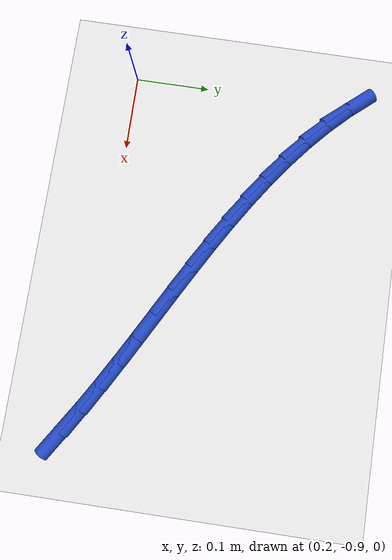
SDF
<sdf version="1.6">
 <world name="default">
  <model name="ground_plane">
   <static>1</static>
   <link name="link">
    <collision name="collision">
     <geometry><plane><normal>0 0 1</normal><size>100 100</size></plane></geometry>
     <surface><friction><ode><mu>100</mu><mu2>50</mu2></ode></friction></surface>
    </collision>
    <visual name="visual">
     <cast_shadows>0</cast_shadows>
     <geometry><plane><normal>0 0 1</normal><size>100 100</size></plane></geometry>
     <material>
      <script><uri>file://media/materials/scripts/gazebo.material</uri><name>Gazebo/WhiteGlow</name></script>
     </material>
    </visual>
   </link>
  </model>
  <model name="line">
   <link name="link_168">
    <pose>0.6838676280852225 -0.917145565636407 0.01 0 1.57 -0.568879682439612</pose>
    <collision name="collision">
     <geometry><cylinder><radius>0.01</radius><length>0.08</length></cylinder></geometry>
    </collision>
    <visual name="visual">
     <material>
      <script><name>Gazebo/Blue</name><uri>file://media/materials/scripts/gazebo.material</uri></script>
     </material>
     <geometry><cylinder><radius>0.01</radius><length>0.08</length></cylinder></geometry>
    </visual>
   </link>
   <link name="link_169">
    <pose>0.6528782518490504 -0.8973312963901333 0.01 0 1.57 -0.5418631592980144</pose>
    <collision name="collision">
     <geometry><cylinder><radius>0.01</radius><length>0.08</length></cylinder></geometry>
    </collision>
    <visual name="visual">
     <material>
      <script><name>Gazebo/Blue</name><uri>file://media/materials/scripts/gazebo.material</uri></script>
     </material>
     <geometry><cylinder><radius>0.01</radius><length>0.08</length></cylinder></geometry>
    </visual>
   </link>
   <link name="link_170">
    <pose>0.6208973015761158 -0.8780798811074675 0.01 0 1.57 -0.5216778588568011</pose>
    <collision name="collision">
     <geometry><cylinder><radius>0.01</radius><length>0.08</length></cylinder></geometry>
    </collision>
    <visual name="visual">
     <material>
      <script><name>Gazebo/Blue</name><uri>file://media/materials/scripts/gazebo.material</uri></script>
     </material>
     <geometry><cylinder><radius>0.01</radius><length>0.08</length></cylinder></geometry>
    </visual>
   </link>
   <link name="link_171">
    <pose>0.5880853938852679 -0.8592198629640143 0.01 0 1.57 -0.5083967828173728</pose>
    <collision name="collision">
     <geometry><cylinder><radius>0.01</radius><length>0.08</length></cylinder></geometry>
    </collision>
    <visual name="visual">
     <material>
      <script><name>Gazebo/Blue</name><uri>file://media/materials/scripts/gazebo.material</uri></script>
     </material>
     <geometry><cylinder><radius>0.01</radius><length>0.08</length></cylinder></geometry>
    </visual>
   </link>
   <link name="link_172">
    <pose>0.5546514443928957 -0.8405886018808604 0.01 0 1.57 -0.5016913745322089</pose>
    <collision name="collision">
     <geometry><cylinder><radius>0.01</radius><length>0.08</length></cylinder></geometry>
    </collision>
    <visual name="visual">
     <material>
      <script><name>Gazebo/Blue</name><uri>file://media/materials/scripts/gazebo.material</uri></script>
     </material>
     <geometry><cylinder><radius>0.01</radius><length>0.08</length></cylinder></geometry>
    </visual>
   </link>
   <link name="link_173">
    <pose>0.5208043687153879 -0.8220234577790924 0.01 0 1.57 -0.5013416904264586</pose>
    <collision name="collision">
     <geometry><cylinder><radius>0.01</radius><length>0.08</length></cylinder></geometry>
    </collision>
    <visual name="visual">
     <material>
      <script><name>Gazebo/Blue</name><uri>file://media/materials/scripts/gazebo.material</uri></script>
     </material>
     <geometry><cylinder><radius>0.01</radius><length>0.08</length></cylinder></geometry>
    </visual>
   </link>
   <link name="link_174">
    <pose>0.48675308246913357 -0.8033617905797963 0.01 0 1.57 -0.5072345747328539</pose>
    <collision name="collision">
     <geometry><cylinder><radius>0.01</radius><length>0.08</length></cylinder></geometry>
    </collision>
    <visual name="visual">
     <material>
      <script><name>Gazebo/Blue</name><uri>file://media/materials/scripts/gazebo.material</uri></script>
     </material>
     <geometry><cylinder><radius>0.01</radius><length>0.08</length></cylinder></geometry>
    </visual>
   </link>
   <link name="link_175">
    <pose>0.45270650127052187 -0.7844409602040596 0.01 0 1.57 -0.5193580589048274</pose>
    <collision name="collision">
     <geometry><cylinder><radius>0.01</radius><length>0.08</length></cylinder></geometry>
    </collision>
    <visual name="visual">
     <material>
      <script><name>Gazebo/Blue</name><uri>file://media/materials/scripts/gazebo.material</uri></script>
     </material>
     <geometry><cylinder><radius>0.01</radius><length>0.08</length></cylinder></geometry>
    </visual>
   </link>
   <link name="link_176">
    <pose>0.41887354073594163 -0.7650983265729682 0.01 0 1.57 -0.5377925207755225</pose>
    <collision name="collision">
     <geometry><cylinder><radius>0.01</radius><length>0.08</length></cylinder></geometry>
    </collision>
    <visual name="visual">
     <material>
      <script><name>Gazebo/Blue</name><uri>file://media/materials/scripts/gazebo.material</uri></script>
     </material>
     <geometry><cylinder><radius>0.01</radius><length>0.08</length></cylinder></geometry>
    </visual>
   </link>
   <link name="link_177">
    <pose>0.3854631164817819 -0.7451712496076092 0.01 0 1.57 -0.5626977898362046</pose>
    <collision name="collision">
     <geometry><cylinder><radius>0.01</radius><length>0.08</length></cylinder></geometry>
    </collision>
    <visual name="visual">
     <material>
      <script><name>Gazebo/Blue</name><uri>file://media/materials/scripts/gazebo.material</uri></script>
     </material>
     <geometry><cylinder><radius>0.01</radius><length>0.08</length></cylinder></geometry>
    </visual>
   </link>
   <link name="link_178">
    <pose>0.35268414412443183 -0.7244970892290691 0.01 0 1.57 -0.5942942127520164</pose>
    <collision name="collision">
     <geometry><cylinder><radius>0.01</radius><length>0.08</length></cylinder></geometry>
    </collision>
    <visual name="visual">
     <material>
      <script><name>Gazebo/Blue</name><uri>file://media/materials/scripts/gazebo.material</uri></script>
     </material>
     <geometry><cylinder><radius>0.01</radius><length>0.08</length></cylinder></geometry>
    </visual>
   </link>
   <link name="link_179">
    <pose>0.3207455392802803 -0.7029132053584342 0.01 0 1.57 -0.6328346844590342</pose>
    <collision name="collision">
     <geometry><cylinder><radius>0.01</radius><length>0.08</length></cylinder></geometry>
    </collision>
    <visual name="visual">
     <material>
      <script><name>Gazebo/Blue</name><uri>file://media/materials/scripts/gazebo.material</uri></script>
     </material>
     <geometry><cylinder><radius>0.01</radius><length>0.08</length></cylinder></geometry>
    </visual>
   </link>
   <link name="link_180">
    <pose>0.2898562175657162 -0.6802569579167915 0.01 0 1.57 -0.6785640042484188</pose>
    <collision name="collision">
     <geometry><cylinder><radius>0.01</radius><length>0.08</length></cylinder></geometry>
    </collision>
    <visual name="visual">
     <material>
      <script><name>Gazebo/Blue</name><uri>file://media/materials/scripts/gazebo.material</uri></script>
     </material>
     <geometry><cylinder><radius>0.01</radius><length>0.08</length></cylinder></geometry>
    </visual>
   </link>
   <link name="link_181">
    <pose>0.2602250945971287 -0.6563657068252273 0.01 0 1.57 -0.7316621506611457</pose>
    <collision name="collision">
     <geometry><cylinder><radius>0.01</radius><length>0.08</length></cylinder></geometry>
    </collision>
    <visual name="visual">
     <material>
      <script><name>Gazebo/Blue</name><uri>file://media/materials/scripts/gazebo.material</uri></script>
     </material>
     <geometry><cylinder><radius>0.01</radius><length>0.08</length></cylinder></geometry>
    </visual>
   </link>
   <link name="link_182">
    <pose>0.23206108599090686 -0.6310768120048286 0.01 0 1.57 -0.7921700743475341</pose>
    <collision name="collision">
     <geometry><cylinder><radius>0.01</radius><length>0.08</length></cylinder></geometry>
    </collision>
    <visual name="visual">
     <material>
      <script><name>Gazebo/Blue</name><uri>file://media/materials/scripts/gazebo.material</uri></script>
     </material>
     <geometry><cylinder><radius>0.01</radius><length>0.08</length></cylinder></geometry>
    </visual>
   </link>
   <link name="link_183">
    <pose>0.2055731073634395 -0.6042276333766817 0.01 0 1.57 -0.8597519425978681</pose>
    <collision name="collision">
     <geometry><cylinder><radius>0.01</radius><length>0.08</length></cylinder></geometry>
    </collision>
    <visual name="visual">
     <material>
      <script><name>Gazebo/Blue</name><uri>file://media/materials/scripts/gazebo.material</uri></script>
     </material>
     <geometry><cylinder><radius>0.01</radius><length>0.08</length></cylinder></geometry>
    </visual>
   </link>
  </model>
 </world>
</sdf>
